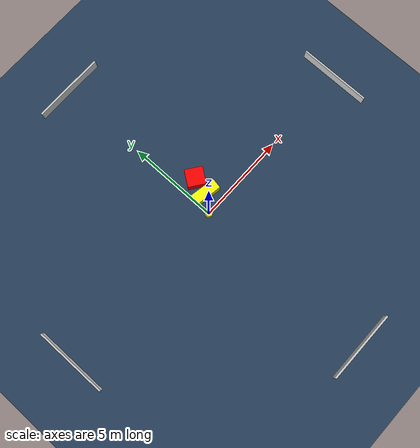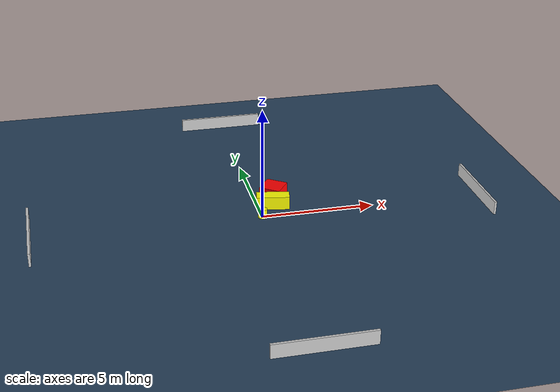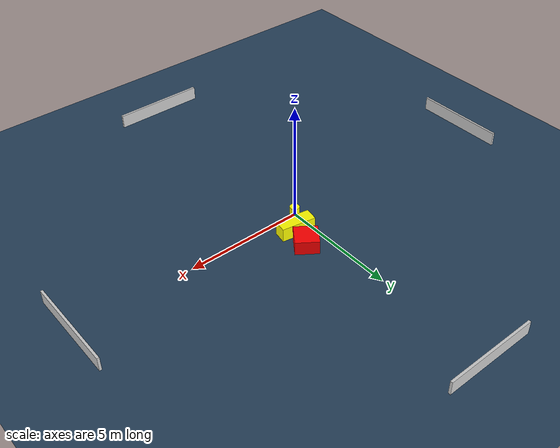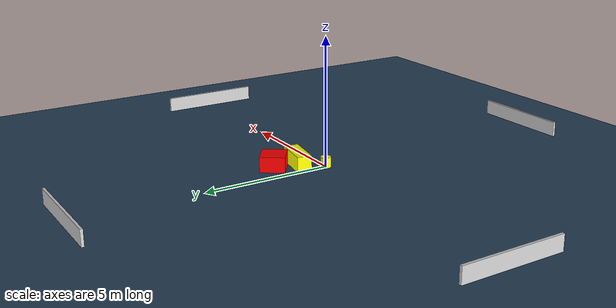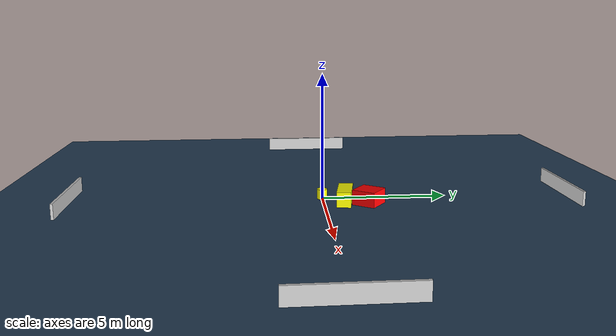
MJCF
<?xml version="1.0" ?>
<mujoco model="generated_environment">
  <option timestep="0.01" integrator="RK4" cone="elliptic"/>
  <default>
    <geom density="1"/>
  </default>
  <asset>
    <texture builtin="gradient" height="3072" name="skybox" rgb1="0.3 0.5 0.7" rgb2="0 0 0" type="skybox" width="512"/>
    <texture builtin="checker" height="300" name="groundplane" rgb1="0.2 0.3 0.4" rgb2="0.1 0.2 0.3" type="2d" width="300"/>
    <material name="groundplane" reflectance="0.2" texrepeat="5 5" texture="groundplane"/>
  </asset>
  <worldbody>
    <light dir="0 0 -1" directional="true" pos="0 0 1.5"/>
    <geom condim="3" friction="0.5 0.005 0.001" material="groundplane" name="floor" pos="0 0 0" size="0 0 0.05" type="plane"/>
    <body name="walls">
      <geom name="wall_1" condim="4" pos="-10.0 0.0 0.3" rgba="0.800000011920929 0.800000011920929 0.800000011920929 1.0" size="0.05 2.0 0.3" type="box"/>
      <geom name="wall_2" condim="4" pos="10.0 0.0 0.3" rgba="0.800000011920929 0.800000011920929 0.800000011920929 1.0" size="0.05 2.0 0.3" type="box"/>
      <geom name="wall_3" condim="4" pos="0.0 -10.0 0.3" rgba="0.800000011920929 0.800000011920929 0.800000011920929 1.0" size="2.0 0.05 0.3" type="box"/>
      <geom name="wall_4" condim="4" pos="0.0 10.0 0.3" rgba="0.800000011920929 0.800000011920929 0.800000011920929 1.0" size="2.0 0.05 0.3" type="box"/>
    </body>
    <body name="robot">
      <joint name="joint_x" type="slide" pos="0 0 0" axis="1 0 0"/>
      <joint name="joint_y" type="slide" pos="0 0 0" axis="0 1 0"/>
      <geom name="robot" type="cylinder" pos="0.0 0.0 0.2" size="0.2 0.2 0.0" mass="5.0" friction="1.0 0.005 0.0001" condim="4" rgba="1.0 1.0 0.0 1.0"/>
    </body>
    <body name="obstacle_1_movable">
      <geom name="obstacle_1_movable" condim="4" pos="0.6587514061751578 0.8380709041527756 0.3" euler="0 0 80.02875163440666" friction="0.0 0.005 0.001" rgba="1.0 1.0 0.0 1.0" size="0.28378076905749766 0.7265468384309932 0.3" type="box" mass="0.1"/>
      <joint type="free"/>
    </body>
    <body name="obstacle_2_static">
      <geom name="obstacle_2_static" condim="4" pos="0.8899446065237439 1.752850091812925 0.3" euler="0 0 324.18100410137646" friction="0.0 0.005 0.001" rgba="1.0 0.0 0.0 1.0" size="0.4839768262254461 0.47777417004419 0.3" type="box"/>
    </body>
  </worldbody>
  <actuator>
    <motor name="actuator_x" joint="joint_x" gear="1" ctrlrange="-1 1"/>
    <motor name="actuator_y" joint="joint_y" gear="1" ctrlrange="-1 1"/>
  </actuator>
</mujoco>
